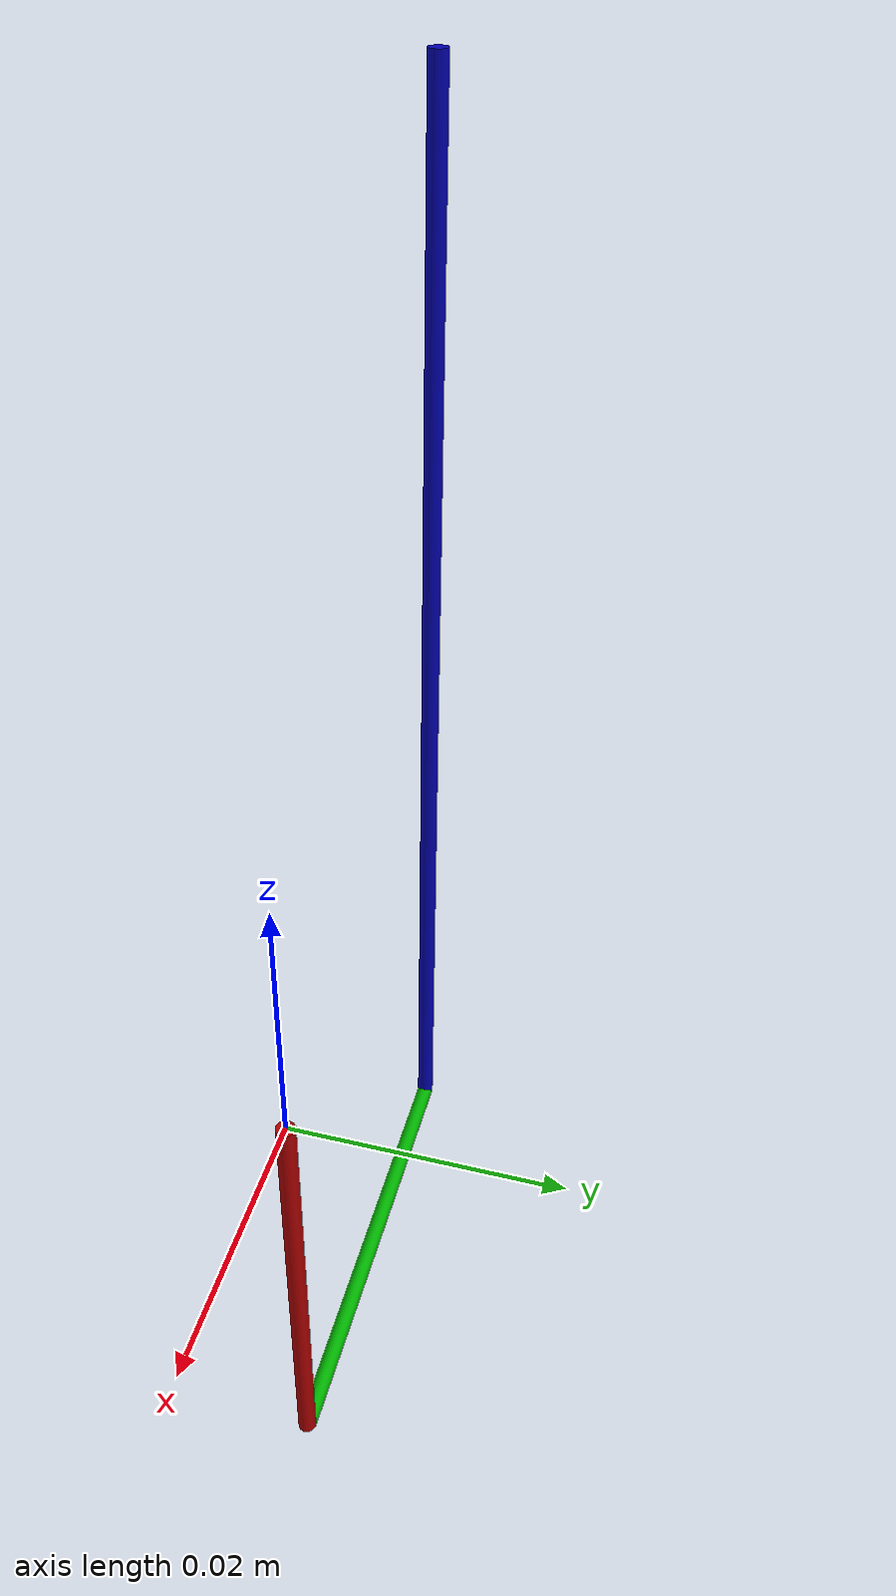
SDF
<?xml version="1.0"?>
<sdf version="1.7">
  <model name="four_bar">
    <link name='driving_link'>
      <inertial>
        <pose>0 0 -0.01915 0 0 0</pose>
        <mass>0.00016893</mass>
        <inertia>
          <ixx>2.067389975625e-08</ixx>
          <iyy>2.067389975625e-08</iyy>
          <izz>4.75115625e-11</izz>
          <ixy>0.0</ixy>
          <ixz>0.0</ixz>
          <iyz>0.0</iyz>
        </inertia>
      </inertial>
      <visual name='driving_link_visual'>
        <pose>0 0 -0.01915 0 0 0</pose>
        <geometry>
          <cylinder>
            <radius>0.00075</radius>
            <length>0.0383</length>
          </cylinder>
        </geometry>
        <material>
          <diffuse>.7 0 0 1</diffuse>
        </material>
      </visual>
    </link>

    <joint name='humerus_joint' type='revolute'>
      <parent>driving_link</parent>
      <child>humerus</child>
      <axis>
        <xyz expressed_in="__model__">0 1 0</xyz>
        <limit>
          <effort>0</effort>
        </limit>
        <dynamics>
          <damping>0.0</damping>
        </dynamics>
      </axis>
    </joint>

    <link name='humerus'>
      <pose relative_to='driving_link'>0 0.0 -0.03830 0 1.57 0</pose>
      <inertial>
        <pose>0 0 -0.02 0 0 0</pose>
        <mass>0.00016893</mass>
        <inertia>
          <ixx>2.2547755781250002e-08</ixx>
          <iyy>2.2547755781250002e-08</iyy>
          <izz>4.75115625e-11</izz>
          <ixy>0.0</ixy>
          <ixz>0.0</ixz>
          <iyz>0.0</iyz>
        </inertia>
      </inertial>
      <visual name='humerus_visual'>
        <pose>0 0 -0.02 0 0 0</pose>
        <geometry>
          <cylinder>
            <radius>0.00075</radius>
            <length>0.04</length>
          </cylinder>
        </geometry>
        <material>
          <diffuse>0 .7 0 1</diffuse>
        </material>
      </visual>
    </link>

    <link name='radius'>
      <pose relative_to='humerus'>0 0 -0.04 0 -1.57 0 </pose>
      <inertial>
        <pose>0 0 0.05 0 0 0</pose>
        <mass>0.00071232</mass>
        <inertia>
          <ixx>5.937001700000001e-07</ixx>
          <iyy>5.937001700000001e-07</iyy>
          <izz>2.0034e-10</izz>
          <ixy>0.0</ixy>
          <ixz>0.0</ixz>
          <iyz>0.0</iyz>
        </inertia>
      </inertial>
      <visual name='radius_visual'>
        <pose>0 0 0.05 0 0 0</pose>
        <geometry>
          <cylinder>
            <radius>0.00075</radius>
            <length>0.1</length>
          </cylinder>
        </geometry>
        <material>
          <diffuse>0 0 .7 1</diffuse>
        </material>
      </visual>
    </link>

    <!-- Replaced by bushign -->

    <frame name="radial_world_anchor" attached_to="radius">
      <pose relative_to="radius">0 0 0.0383 0 0 0</pose>
    </frame>
    <joint name='mid_radial_joint' type='revolute'>
      <parent>world</parent>
      <child>radial_world_anchor</child>
      <axis>
        <xyz expressed_in="__model__">0 1 0</xyz>
        <limit>
          <effort>0</effort>
        </limit>
        <dynamics>
          <damping>0</damping>
        </dynamics>
      </axis>
    </joint>

    <joint name="driving_joint" type="revolute">
      <parent>world</parent>
      <child>driving_link</child>
      <axis>
        <xyz expressed_in="__model__">0 1 0</xyz>
        <limit>
        </limit>
        <dynamics>
          <damping>0.0</damping>
        </dynamics>
      </axis>
    </joint>

    <frame name="humerus_radial_bushing" attached_to="humerus">
      <pose relative_to="humerus">0 0 -0.04 0 0 0 </pose>
    </frame>
    <frame name="radial_humerus_bushing" attached_to="radius">
      <pose relative_to="radius">0 0 0 0 0 0</pose>
    </frame>
  </model>
</sdf>
